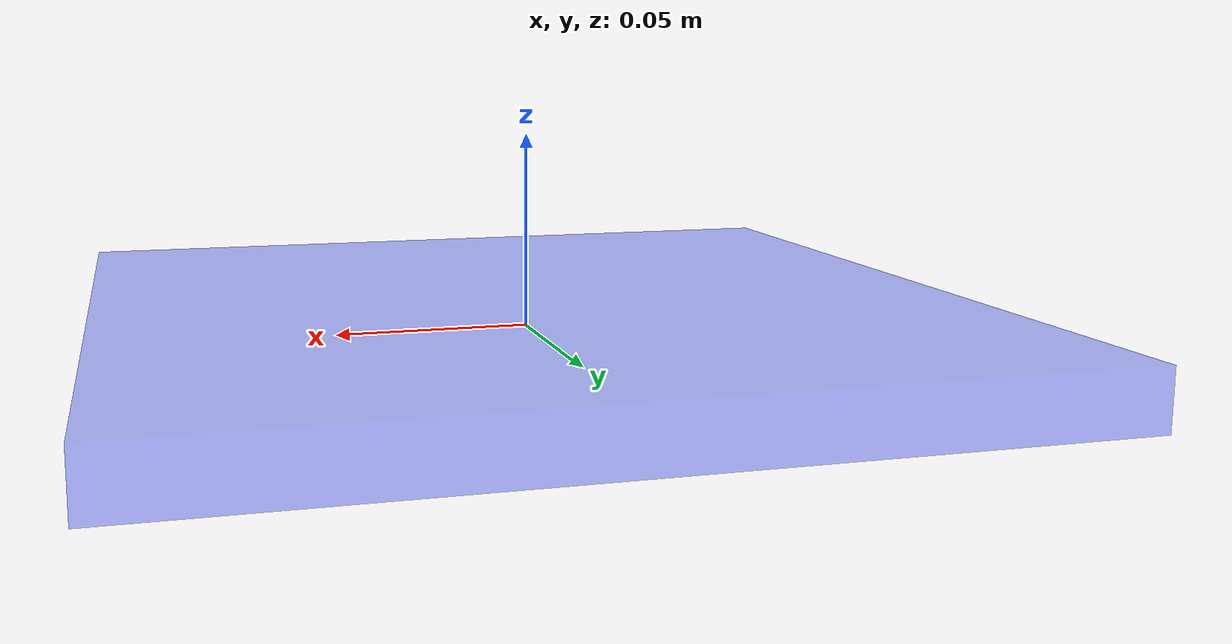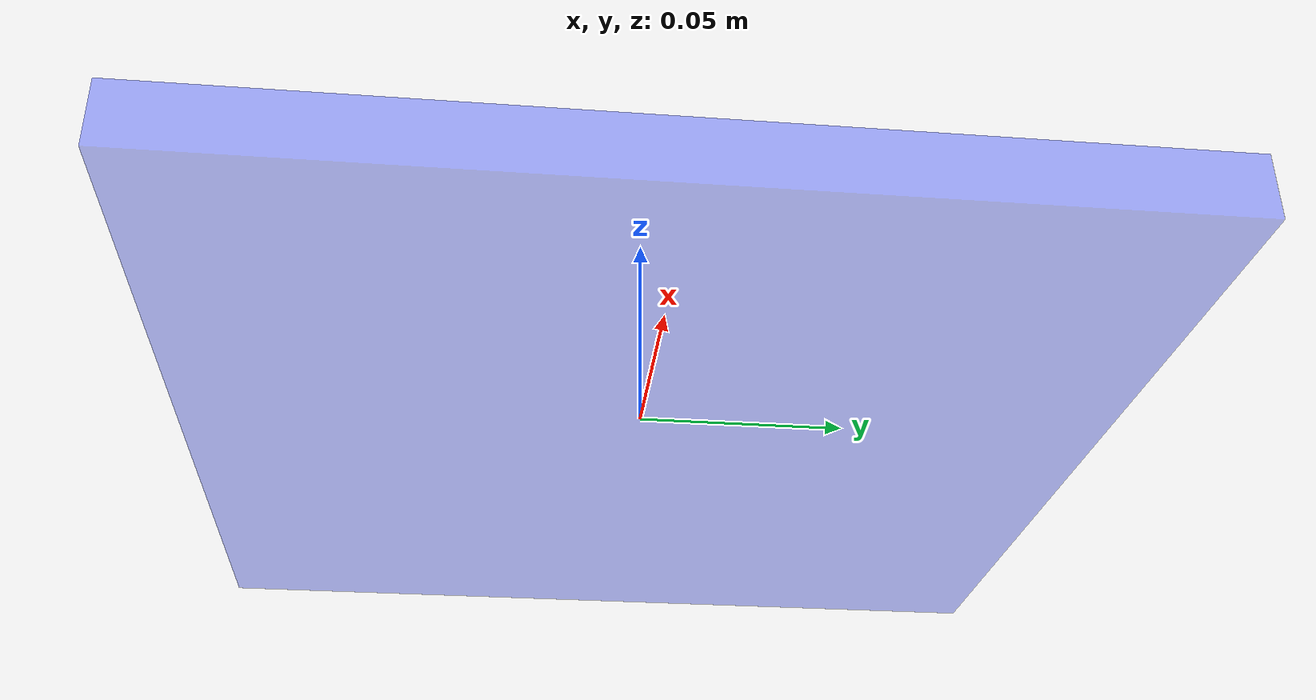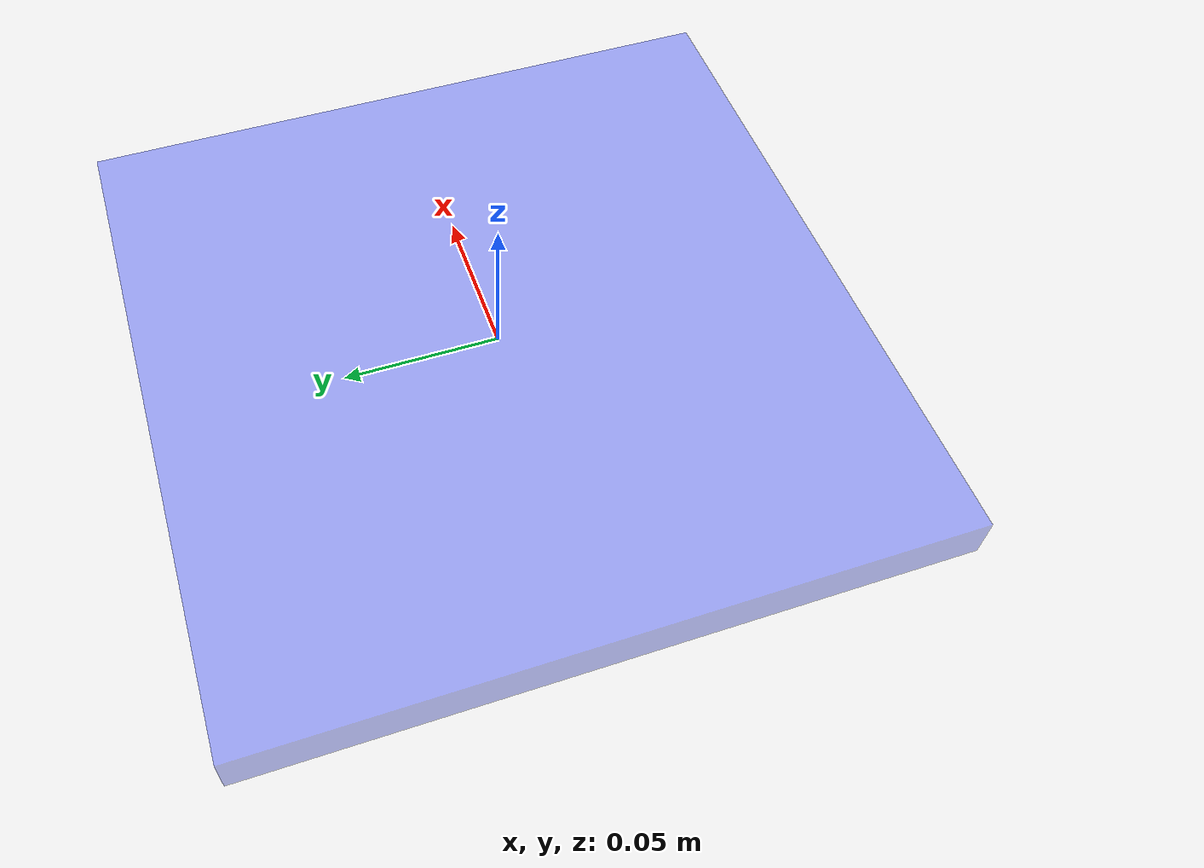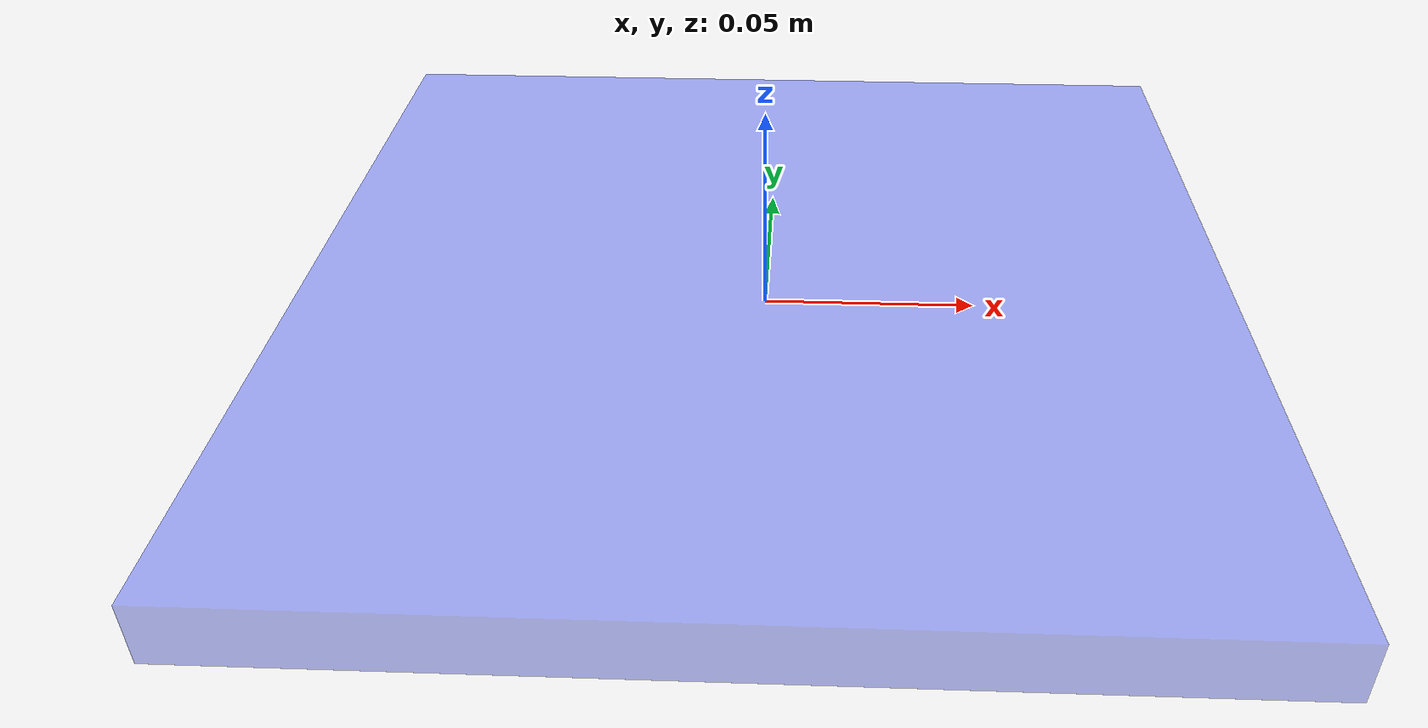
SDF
<?xml version="1.0" ?>
<sdf version="1.9">
  <model name="blue_goal">
    <static>true</static>

    <link name="base">
      <collision name="floor_collision">
        <geometry>
          <box>
            <size>0.22 0.22 0.015</size>
          </box>
        </geometry>
      </collision>

      <visual name="floor_visual">
        <geometry>
          <box>
            <size>0.22 0.22 0.015</size>
          </box>
        </geometry>
        <material>
          <diffuse>0.0 0.1 1.0 0.35</diffuse>
        </material>
      </visual>
    </link>
  </model>
</sdf>
